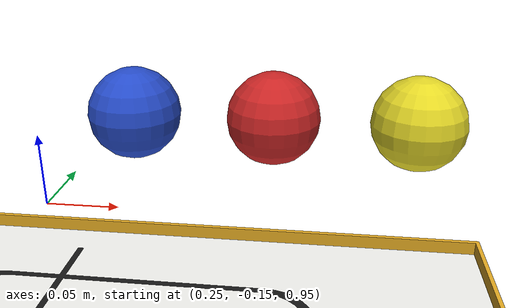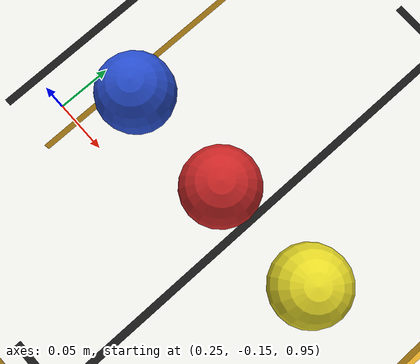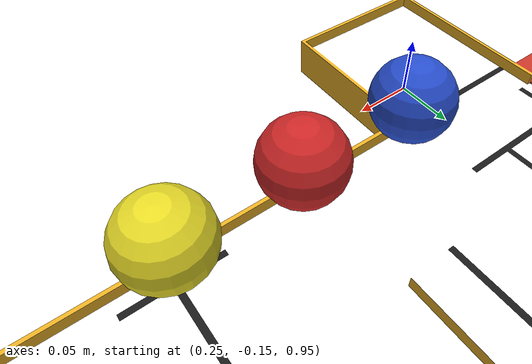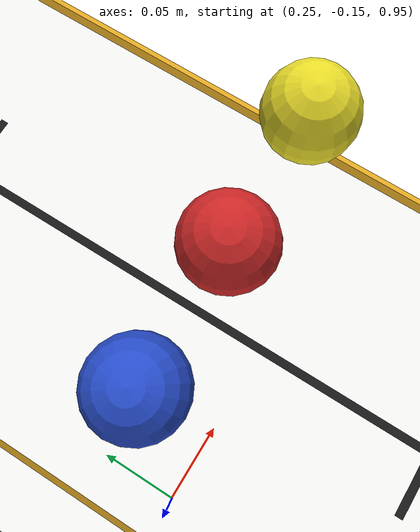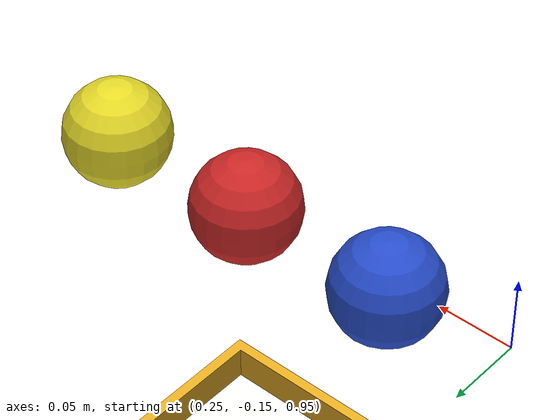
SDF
<?xml version="1.0"?>
<sdf version="1.5">
  <world name="maze">

    <physics name="default_physics" default="true" type="ode">
      <gravity>0 0 -9.8</gravity>
    </physics>

    <include>
      <name>sun</name>
      <uri>model://sun</uri>
    </include>

    <light name="point_light" type="point">
      <pose>0 0 2 0 0 0</pose>
      <diffuse>1 1 1 1</diffuse>
      <specular>0.1 0.1 0.1 1.0</specular>
      <attenuation>
        <range>10</range>
        <constant>0.1</constant>
        <linear>0.08</linear>
        <quadratic>0</quadratic>
      </attenuation>
      <cast_shadows>false</cast_shadows>
      <direction>0 0 -1</direction>
    </light>

    <include>
      <name>sim_world</name>
      <uri>model://maze</uri>
      <static>true</static>
      <pose>0 0 0 0 0 0</pose>
    </include>

    <plugin name="ros_link_attacher_plugin" filename="libgazebo_ros_link_attacher_plugin.so"/>

    <!-- test_ball1（Blue） -->
    <model name="test_ball1">
      <pose>0.3 -0.1 1 0 0 0</pose>
      <link name="ball_link1">
        <inertial>
          <mass>0.035</mass>
          <inertia>
            <ixx>0.000006</ixx>
            <iyy>0.000006</iyy>
            <izz>0.000006</izz>
            <ixy>0</ixy>
            <ixz>0</ixz>
            <iyz>0</iyz>
          </inertia>
        </inertial>
	<collision name="collision">
          <geometry>
            <sphere><radius>0.033</radius></sphere>
          </geometry>
          <surface>
            <friction>
              <ode>
                <mu>0.05</mu>
		<mu2>0.05</mu2>
              </ode>
            </friction>
          </surface>
        </collision>
        <visual name="visual">
          <geometry>
            <sphere><radius>0.033</radius></sphere>
          </geometry>
          <material>
            <script>
              <uri>file://media/materials/scripts/gazebo.material</uri>
              <name>Gazebo/Blue</name>
            </script>
          </material>
        </visual>
      </link>
    </model>

    <!-- test_ball2（Red） -->
    <model name="test_ball2">
      <pose>0.4 -0.1 1 0 0 0</pose>
      <link name="ball_link2">
        <inertial>
          <mass>0.035</mass>
          <inertia>
            <ixx>0.0001</ixx>
            <iyy>0.0001</iyy>
            <izz>0.0001</izz>
            <ixy>0</ixy>
            <ixz>0</ixz>
            <iyz>0</iyz>
          </inertia>
        </inertial>
	<!-- 滑り＆跳ね防止 -->
        <velocity_decay>
          <linear>0.0</linear>
          <angular>0.2</angular>
        </velocity_decay>
	<collision name="collision">
          <geometry>
            <sphere><radius>0.033</radius></sphere>
          </geometry>
          <surface>
            <friction>
              <ode>
                <mu>0.5</mu>
                <mu2>0.5</mu2>
              </ode>
            </friction>
          </surface>
        </collision>
        <visual name="visual">
          <geometry>
            <sphere><radius>0.033</radius></sphere>
          </geometry>
          <material>
            <script>
              <uri>file://media/materials/scripts/gazebo.material</uri>
              <name>Gazebo/Red</name>
            </script>
          </material>
        </visual>
      </link>
    </model>

    <!-- test_ball3（Yellow） -->
    <model name="test_ball3">
      <pose>0.5 -0.1 1 0 0 0</pose>
      <link name="ball_link3">
        <inertial>
          <mass>0.035</mass>
          <inertia>
            <ixx>0.0001</ixx>
            <iyy>0.0001</iyy>
            <izz>0.0001</izz>
            <ixy>0</ixy>
            <ixz>0</ixz>
            <iyz>0</iyz>
          </inertia>
        </inertial>
	<!-- 滑り＆跳ね防止 -->
        <velocity_decay>
          <linear>0.0</linear>
          <angular>0.2</angular>
        </velocity_decay>
	<collision name="collision">
          <geometry>
            <sphere><radius>0.033</radius></sphere>
          </geometry>
          <surface>
            <friction>
              <ode>
                <mu>0.5</mu>
                <mu2>0.5</mu2>
              </ode>
            </friction>
          </surface>
        </collision>
        <visual name="visual">
          <geometry>
            <sphere><radius>0.033</radius></sphere>
          </geometry>
          <material>
            <script>
              <uri>file://media/materials/scripts/gazebo.material</uri>
              <name>Gazebo/Yellow</name>
            </script>
          </material>
        </visual>
      </link>
    </model>

    <include>
      <uri>model://ground_plane</uri>
    </include>
  </world>
</sdf>

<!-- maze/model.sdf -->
<sdf version='1.5'>
  <model name="maze">
    <static>true</static>
    <link name="maze">
      <collision name="collision">
        <geometry>
          <mesh>
            <uri>model://maze/STL/feild.stl</uri>
          </mesh>
        </geometry>
        <surface>
          <friction>
            <ode>
              <mu>0.3</mu>
              <mu2>0.3</mu2>
            </ode>
          </friction>
        </surface>
      </collision>
      <visual name="visual">
        <geometry>
          <mesh>
            <uri>model://maze/DAE/feild.dae</uri>
          </mesh>
        </geometry>
      </visual>
    </link>
  </model>
</sdf>
